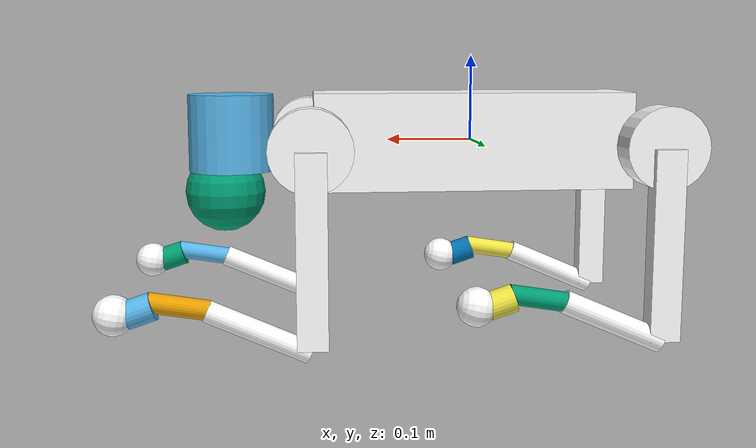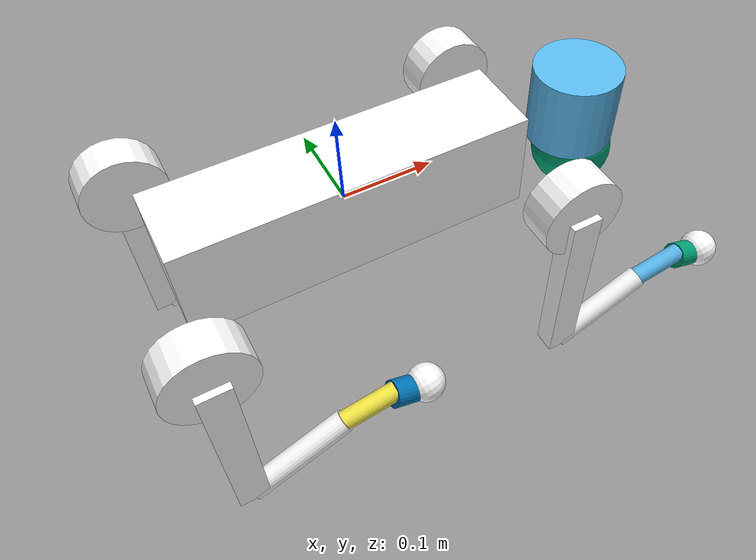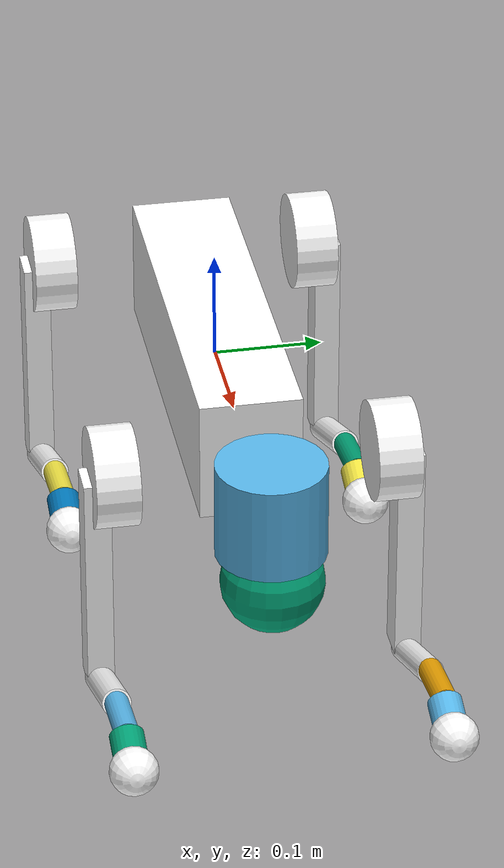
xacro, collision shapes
<robot xmlns:xacro="http://www.ros.org/wiki/xacro" name="robot">
    <xacro:arg name="simulation" default="false"/>
    <xacro:property name="simulation" value="$(arg simulation)"/>

    <xacro:include filename="$(find unitree_description)/urdf/go2/main.urdf"/>

    <xacro:if value="${simulation == 'mujoco'}">
        <xacro:include filename="$(find unitree_description)/urdf/go2/mujoco.xacro"/>
    </xacro:if>
    <xacro:if value="${simulation == False}">
        <xacro:include filename="$(find unitree_description)/urdf/go2/real.xacro"/>
    </xacro:if>

</robot>

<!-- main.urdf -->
<robot
        name="go2_description">
    <link
            name="base">
        <inertial>
            <origin
                    xyz="0.021112 0 -0.005366"
                    rpy="0 0 0"/>
            <mass
                    value="6.921"/>
            <inertia
                    ixx="0.02448"
                    ixy="0.00012166"
                    ixz="0.0014849"
                    iyy="0.098077"
                    iyz="-3.12E-05"
                    izz="0.107"/>
        </inertial>
        <visual>
            <origin
                    xyz="0 0 0"
                    rpy="0 0 0"/>
            <geometry>
                <mesh
                        filename="package://go2_description/dae/base.dae"/>
            </geometry>
            <material
                    name="">
                <color
                        rgba="1 1 1 1"/>
            </material>
        </visual>
        <collision>
            <origin rpy="0 0 0" xyz="0 0 0"/>
            <geometry>
                <box size="0.3762 0.0935 0.114"/>
            </geometry>
        </collision>
    </link>
    <link
            name="Head_upper">
        <inertial>
            <origin
                    xyz="0 0 0"
                    rpy="0 0 0"/>
            <mass
                    value="0.001"/>
            <inertia
                    ixx="9.6e-06"
                    ixy="0"
                    ixz="0"
                    iyy="9.6e-06"
                    iyz="0"
                    izz="9.6e-06"/>
        </inertial>
        <collision>
            <origin
                    xyz="0 0 0"
                    rpy="0 0 0"/>
            <geometry>
                <cylinder radius="0.05" length="0.09"/>
            </geometry>
        </collision>
    </link>
    <joint
            name="Head_upper_joint"
            type="fixed" dont_collapse="true">
        <origin
                xyz="0.285 0 0.01"
                rpy="0 0 0"/>
        <parent
                link="base"/>
        <child
                link="Head_upper"/>
        <axis
                xyz="0 0 0"/>
    </joint>
    <link
            name="Head_lower">
        <inertial>
            <origin
                    xyz="0 0 0"
                    rpy="0 0 0"/>
            <mass
                    value="0.001"/>
            <inertia
                    ixx="9.6e-06"
                    ixy="0"
                    ixz="0"
                    iyy="9.6e-06"
                    iyz="0"
                    izz="9.6e-06"/>
        </inertial>
        <collision>
            <origin
                    xyz="0 0 0"
                    rpy="0 0 0"/>
            <geometry>
                <sphere radius="0.047"/>
            </geometry>
        </collision>
    </link>
    <joint
            name="Head_lower_joint"
            type="fixed" dont_collapse="true">
        <origin
                xyz="0.008 0 -0.07"
                rpy="0 0 0"/>
        <parent
                link="Head_upper"/>
        <child
                link="Head_lower"/>
        <axis
                xyz="0 0 0"/>
    </joint>
    <link
            name="FL_hip">
        <inertial>
            <origin
                    xyz="-0.0054 0.00194 -0.000105"
                    rpy="0 0 0"/>
            <mass
                    value="0.678"/>
            <inertia
                    ixx="0.00048"
                    ixy="-3.01E-06"
                    ixz="1.11E-06"
                    iyy="0.000884"
                    iyz="-1.42E-06"
                    izz="0.000596"/>
        </inertial>
        <visual>
            <origin
                    xyz="0 0 0"
                    rpy="0 0 0"/>
            <geometry>
                <mesh
                        filename="package://go2_description/dae/hip.dae"/>
            </geometry>
            <material
                    name="">
                <color
                        rgba="1 1 1 1"/>
            </material>
        </visual>
        <collision>
            <origin rpy="1.5707963267948966 0 0" xyz="0 0.08 0"/>
            <geometry>
                <cylinder length="0.04" radius="0.046"/>
            </geometry>
        </collision>
    </link>
    <joint
            name="FL_hip_joint"
            type="revolute">
        <origin
                xyz="0.1934 0.0465 0"
                rpy="0 0 0"/>
        <parent
                link="base"/>
        <child
                link="FL_hip"/>
        <axis
                xyz="1 0 0"/>
        <limit
                lower="-1.0472"
                upper="1.0472"
                effort="23.7"
                velocity="30.1"/>
    </joint>
    <link name="FL_hip_rotor">
        <inertial>
            <origin rpy="0 0 0" xyz="0.0 0.0 0.0"/>
            <mass value="0.089"/>
            <inertia ixx="0.000111842" ixy="0.0" ixz="0.0" iyy="0.000059647" iyz="0.0" izz="0.000059647"/>
        </inertial>
    </link>
    <joint name="FL_hip_rotor_joint" type="fixed">
        <origin rpy="0 0 0" xyz="0.11215 0.04675 0"/>
        <parent link="base"/>
        <child link="FL_hip_rotor"/>
    </joint>
    <link
            name="FL_thigh">
        <inertial>
            <origin
                    xyz="-0.00374 -0.0223 -0.0327"
                    rpy="0 0 0"/>
            <mass
                    value="1.152"/>
            <inertia
                    ixx="0.00584"
                    ixy="8.72E-05"
                    ixz="-0.000289"
                    iyy="0.0058"
                    iyz="0.000808"
                    izz="0.00103"/>
        </inertial>
        <visual>
            <origin
                    xyz="0 0 0"
                    rpy="0 0 0"/>
            <geometry>
                <mesh
                        filename="package://go2_description/dae/thigh.dae"/>
            </geometry>
            <material
                    name="">
                <color
                        rgba="1 1 1 1"/>
            </material>
        </visual>
        <collision>
            <origin rpy="0 1.5707963267948966 0" xyz="0 0 -0.1065"/>
            <geometry>
                <box size="0.213 0.0245 0.034"/>
            </geometry>
        </collision>
    </link>
    <joint
            name="FL_thigh_joint"
            type="revolute">
        <origin
                xyz="0 0.0955 0"
                rpy="0 0 0"/>
        <parent
                link="FL_hip"/>
        <child
                link="FL_thigh"/>
        <axis
                xyz="0 1 0"/>
        <limit
                lower="-1.5708"
                upper="3.4907"
                effort="23.7"
                velocity="30.1"/>
    </joint>
    <link name="FL_thigh_rotor">
        <inertial>
            <origin rpy="0 0 0" xyz="0.0 0.0 0.0"/>
            <mass value="0.089"/>
            <inertia ixx="0.000059647" ixy="0.0" ixz="0.0" iyy="0.000111842" iyz="0.0" izz="0.000059647"/>
        </inertial>
    </link>
    <joint name="FL_thigh_rotor_joint" type="fixed">
        <origin rpy="0 0 0" xyz="0 -0.00015 0"/>
        <parent link="FL_hip"/>
        <child link="FL_thigh_rotor"/>
    </joint>
    <link
            name="FL_calf">
        <inertial>
            <origin
                    xyz="0.00548 -0.000975 -0.115"
                    rpy="0 0 0"/>
            <mass
                    value="0.154"/>
            <inertia
                    ixx="0.00108"
                    ixy="3.4E-07"
                    ixz="1.72E-05"
                    iyy="0.0011"
                    iyz="8.28E-06"
                    izz="3.29E-05"/>
        </inertial>
        <visual>
            <origin
                    xyz="0 0 0"
                    rpy="0 0 0"/>
            <geometry>
                <mesh
                        filename="package://go2_description/dae/calf.dae"/>
            </geometry>
            <material
                    name="">
                <color
                        rgba="1 1 1 1"/>
            </material>
        </visual>
        <collision>
            <origin rpy="0 -0.21 0" xyz="0.008 0 -0.06"/>
            <geometry>
                <cylinder length="0.12" radius="0.012"/>
            </geometry>
        </collision>
    </link>
    <joint
            name="FL_calf_joint"
            type="revolute">
        <origin
                xyz="0 0 -0.213"
                rpy="0 0 0"/>
        <parent
                link="FL_thigh"/>
        <child
                link="FL_calf"/>
        <axis
                xyz="0 1 0"/>
        <limit
                lower="-2.7227"
                upper="-0.83776"
                effort="45.43"
                velocity="15.70"/>
    </joint>
    <link
            name="FL_calflower">
        <collision>
            <origin rpy="0 0 0" xyz="0 0 0"/>
            <geometry>
                <cylinder length="0.065" radius="0.011"/>
            </geometry>
        </collision>
    </link>
    <joint
            name="FL_calflower_joint"
            type="fixed">
        <origin
                xyz="0.020 0 -0.148"
                rpy="0 0.05 0"/>
        <parent
                link="FL_calf"/>
        <child
                link="FL_calflower"/>
        <axis
                xyz="0 0 0"/>
    </joint>
    <link
            name="FL_calflower1">
        <collision>
            <origin rpy="0 0 0" xyz="0 0 0"/>
            <geometry>
                <cylinder length="0.03" radius="0.0155"/>
            </geometry>
        </collision>
    </link>
    <joint
            name="FL_calflower1_joint"
            type="fixed">
        <origin
                xyz="-0.01 0 -0.04"
                rpy="0 0.48 0"/>
        <parent
                link="FL_calflower"/>
        <child
                link="FL_calflower1"/>
        <axis
                xyz="0 0 0"/>
    </joint>
    <link name="FL_calf_rotor">
        <inertial>
            <origin rpy="0 0 0" xyz="0.0 0.0 0.0"/>
            <mass value="0.089"/>
            <inertia ixx="0.000059647" ixy="0.0" ixz="0.0" iyy="0.000111842" iyz="0.0" izz="0.000059647"/>
        </inertial>
    </link>
    <joint name="FL_calf_rotor_joint" type="fixed">
        <origin rpy="0 0 0" xyz="0 -0.03235 0"/>
        <parent link="FL_thigh"/>
        <child link="FL_calf_rotor"/>
    </joint>
    <link
            name="FL_foot">
        <inertial>
            <origin
                    xyz="0 0 0"
                    rpy="0 0 0"/>
            <mass
                    value="0.04"/>
            <inertia
                    ixx="9.6e-06"
                    ixy="0"
                    ixz="0"
                    iyy="9.6e-06"
                    iyz="0"
                    izz="9.6e-06"/>
        </inertial>
        <visual>
            <origin
                    xyz="0 0 0"
                    rpy="0 0 0"/>
            <geometry>
                <mesh
                        filename="package://go2_description/dae/foot.dae"/>
            </geometry>
            <material
                    name="">
                <color
                        rgba="1 1 1 1"/>
            </material>
        </visual>
        <collision>
            <origin rpy="0 0 0" xyz="-0.002 0 0"/>
            <geometry>
                <sphere radius="0.022"/>
            </geometry>
        </collision>
    </link>
    <joint
            name="FL_foot_joint"
            type="fixed" dont_collapse="true">
        <origin
                xyz="0 0 -0.213"
                rpy="0 0 0"/>
        <parent
                link="FL_calf"/>
        <child
                link="FL_foot"/>
        <axis
                xyz="0 0 0"/>
    </joint>
    <link
            name="FR_hip">
        <inertial>
            <origin
                    xyz="-0.0054 -0.00194 -0.000105"
                    rpy="0 0 0"/>
            <mass
                    value="0.678"/>
            <inertia
                    ixx="0.00048"
                    ixy="3.01E-06"
                    ixz="1.11E-06"
                    iyy="0.000884"
                    iyz="1.42E-06"
                    izz="0.000596"/>
        </inertial>
        <visual>
            <origin
                    xyz="0 0 0"
                    rpy="3.1415 0 0"/>
            <geometry>
                <mesh
                        filename="package://go2_description/dae/hip.dae"/>
            </geometry>
            <material
                    name="">
                <color
                        rgba="1 1 1 1"/>
            </material>
        </visual>
        <collision>
            <origin rpy="1.5707963267948966 0 0" xyz="0 -0.08 0"/>
            <geometry>
                <cylinder length="0.04" radius="0.046"/>
            </geometry>
        </collision>
    </link>
    <joint
            name="FR_hip_joint"
            type="revolute">
        <origin
                xyz="0.1934 -0.0465 0"
                rpy="0 0 0"/>
        <parent
                link="base"/>
        <child
                link="FR_hip"/>
        <axis
                xyz="1 0 0"/>
        <limit
                lower="-1.0472"
                upper="1.0472"
                effort="23.7"
                velocity="30.1"/>
    </joint>
    <link name="FR_hip_rotor">
        <inertial>
            <origin rpy="0 0 0" xyz="0.0 0.0 0.0"/>
            <mass value="0.089"/>
            <inertia ixx="0.000111842" ixy="0.0" ixz="0.0" iyy="0.000059647" iyz="0.0" izz="0.000059647"/>
        </inertial>
    </link>
    <joint name="FR_hip_rotor_joint" type="fixed">
        <origin rpy="0 0 0" xyz="0.11215 -0.04675 0"/>
        <parent link="base"/>
        <child link="FR_hip_rotor"/>
    </joint>
    <link
            name="FR_thigh">
        <inertial>
            <origin
                    xyz="-0.00374 0.0223 -0.0327"
                    rpy="0 0 0"/>
            <mass
                    value="1.152"/>
            <inertia
                    ixx="0.00584"
                    ixy="-8.72E-05"
                    ixz="-0.000289"
                    iyy="0.0058"
                    iyz="-0.000808"
                    izz="0.00103"/>
        </inertial>
        <visual>
            <origin
                    xyz="0 0 0"
                    rpy="0 0 0"/>
            <geometry>
                <mesh
                        filename="package://go2_description/dae/thigh_mirror.dae"/>
            </geometry>
            <material
                    name="">
                <color
                        rgba="1 1 1 1"/>
            </material>
        </visual>
        <collision>
            <origin rpy="0 1.5707963267948966 0" xyz="0 0 -0.1065"/>
            <geometry>
                <box size="0.213 0.0245 0.034"/>
            </geometry>
        </collision>
    </link>
    <joint
            name="FR_thigh_joint"
            type="revolute">
        <origin
                xyz="0 -0.0955 0"
                rpy="0 0 0"/>
        <parent
                link="FR_hip"/>
        <child
                link="FR_thigh"/>
        <axis
                xyz="0 1 0"/>
        <limit
                lower="-1.5708"
                upper="3.4907"
                effort="23.7"
                velocity="30.1"/>
    </joint>
    <link name="FR_thigh_rotor">
        <inertial>
            <origin rpy="0 0 0" xyz="0.0 0.0 0.0"/>
            <mass value="0.089"/>
            <inertia ixx="0.000059647" ixy="0.0" ixz="0.0" iyy="0.000111842" iyz="0.0" izz="0.000059647"/>
        </inertial>
    </link>
    <joint name="FR_thigh_rotor_joint" type="fixed">
        <origin rpy="0 0 0" xyz="0 0.00015 0"/>
        <parent link="FR_hip"/>
        <child link="FR_thigh_rotor"/>
    </joint>
    <link
            name="FR_calf">
        <inertial>
            <origin
                    xyz="0.00548 0.000975 -0.115"
                    rpy="0 0 0"/>
            <mass
                    value="0.154"/>
            <inertia
                    ixx="0.00108"
                    ixy="-3.4E-07"
                    ixz="1.72E-05"
                    iyy="0.0011"
                    iyz="-8.28E-06"
                    izz="3.29E-05"/>
        </inertial>
        <visual>
            <origin
                    xyz="0 0 0"
                    rpy="0 0 0"/>
            <geometry>
                <mesh
                        filename="package://go2_description/dae/calf_mirror.dae"/>
            </geometry>
            <material
                    name="">
                <color
                        rgba="1 1 1 1"/>
            </material>
        </visual>
        <collision>
            <origin rpy="0 -0.2 0" xyz="0.01 0 -0.06"/>
            <geometry>
                <cylinder length="0.12" radius="0.013"/>
            </geometry>
        </collision>
    </link>
    <joint
            name="FR_calf_joint"
            type="revolute">
        <origin
                xyz="0 0 -0.213"
                rpy="0 0 0"/>
        <parent
                link="FR_thigh"/>
        <child
                link="FR_calf"/>
        <axis
                xyz="0 1 0"/>
        <limit
                lower="-2.7227"
                upper="-0.83776"
                effort="45.43"
                velocity="15.70"/>
    </joint>
    <link
            name="FR_calflower">
        <collision>
            <origin rpy="0 0 0" xyz="0 0 0"/>
            <geometry>
                <cylinder length="0.065" radius="0.011"/>
            </geometry>
        </collision>
    </link>
    <joint
            name="FR_calflower_joint"
            type="fixed">
        <origin
                xyz="0.020 0 -0.148"
                rpy="0 0.05 0"/>
        <parent
                link="FR_calf"/>
        <child
                link="FR_calflower"/>
        <axis
                xyz="0 0 0"/>
    </joint>
    <link
            name="FR_calflower1">
        <collision>
            <origin rpy="0 0 0" xyz="0 0 0"/>
            <geometry>
                <cylinder length="0.03" radius="0.0155"/>
            </geometry>
        </collision>
    </link>
    <joint
            name="FR_calflower1_joint"
            type="fixed">
        <origin
                xyz="-0.01 0 -0.04"
                rpy="0 0.48 0"/>
        <parent
                link="FR_calflower"/>
        <child
                link="FR_calflower1"/>
        <axis
                xyz="0 0 0"/>
    </joint>
    <link name="FR_calf_rotor">
        <inertial>
            <origin rpy="0 0 0" xyz="0.0 0.0 0.0"/>
            <mass value="0.089"/>
            <inertia ixx="0.000059647" ixy="0.0" ixz="0.0" iyy="0.000111842" iyz="0.0" izz="0.000059647"/>
        </inertial>
    </link>
    <joint name="FR_calf_rotor_joint" type="fixed">
        <origin rpy="0 0 0" xyz="0 0.03235 0"/>
        <parent link="FR_thigh"/>
        <child link="FR_calf_rotor"/>
    </joint>
    <link
            name="FR_foot">
        <inertial>
            <origin
                    xyz="0 0 0"
                    rpy="0 0 0"/>
            <mass
                    value="0.04"/>
            <inertia
                    ixx="9.6e-06"
                    ixy="0"
                    ixz="0"
                    iyy="9.6e-06"
                    iyz="0"
                    izz="9.6e-06"/>
        </inertial>
        <visual>
            <origin
                    xyz="0 0 0"
                    rpy="0 0 0"/>
            <geometry>
                <mesh
                        filename="package://go2_description/dae/foot.dae"/>
            </geometry>
            <material
                    name="">
                <color
                        rgba="1 1 1 1"/>
            </material>
        </visual>
        <collision>
            <origin rpy="0 0 0" xyz="-0.002 0 0"/>
            <geometry>
                <sphere radius="0.022"/>
            </geometry>
        </collision>
    </link>
    <joint
            name="FR_foot_joint"
            type="fixed" dont_collapse="true">
        <origin
                xyz="0 0 -0.213"
                rpy="0 0 0"/>
        <parent
                link="FR_calf"/>
        <child
                link="FR_foot"/>
        <axis
                xyz="0 0 0"/>
    </joint>
    <link
            name="RL_hip">
        <inertial>
            <origin
                    xyz="0.0054 0.00194 -0.000105"
                    rpy="0 0 0"/>
            <mass
                    value="0.678"/>
            <inertia
                    ixx="0.00048"
                    ixy="3.01E-06"
                    ixz="-1.11E-06"
                    iyy="0.000884"
                    iyz="-1.42E-06"
                    izz="0.000596"/>
        </inertial>
        <visual>
            <origin
                    xyz="0 0 0"
                    rpy="0 3.1415 0"/>
            <geometry>
                <mesh
                        filename="package://go2_description/dae/hip.dae"/>
            </geometry>
            <material
                    name="">
                <color
                        rgba="1 1 1 1"/>
            </material>
        </visual>
        <collision>
            <origin rpy="1.5707963267948966 0 0" xyz="0 0.08 0"/>
            <geometry>
                <cylinder length="0.04" radius="0.046"/>
            </geometry>
        </collision>
    </link>
    <joint
            name="RL_hip_joint"
            type="revolute">
        <origin
                xyz="-0.1934 0.0465 0"
                rpy="0 0 0"/>
        <parent
                link="base"/>
        <child
                link="RL_hip"/>
        <axis
                xyz="1 0 0"/>
        <limit
                lower="-1.0472"
                upper="1.0472"
                effort="23.7"
                velocity="30.1"/>
    </joint>
    <link name="RL_hip_rotor">
        <inertial>
            <origin rpy="0 0 0" xyz="0.0 0.0 0.0"/>
            <mass value="0.089"/>
            <inertia ixx="0.000111842" ixy="0.0" ixz="0.0" iyy="0.000059647" iyz="0.0" izz="0.000059647"/>
        </inertial>
    </link>
    <joint name="RL_hip_rotor_joint" type="fixed">
        <origin rpy="0 0 0" xyz="-0.11215 0.04675 0"/>
        <parent link="base"/>
        <child link="RL_hip_rotor"/>
    </joint>
    <link
            name="RL_thigh">
        <inertial>
            <origin
                    xyz="-0.00374 -0.0223 -0.0327"
                    rpy="0 0 0"/>
            <mass
                    value="1.152"/>
            <inertia
                    ixx="0.00584"
                    ixy="8.72E-05"
                    ixz="-0.000289"
                    iyy="0.0058"
                    iyz="0.000808"
                    izz="0.00103"/>
        </inertial>
        <visual>
            <origin
                    xyz="0 0 0"
                    rpy="0 0 0"/>
            <geometry>
                <mesh
                        filename="package://go2_description/dae/thigh.dae"/>
            </geometry>
            <material
                    name="">
                <color
                        rgba="1 1 1 1"/>
            </material>
        </visual>
        <collision>
            <origin rpy="0 1.5707963267948966 0" xyz="0 0 -0.1065"/>
            <geometry>
                <box size="0.213 0.0245 0.034"/>
            </geometry>
        </collision>
    </link>
    <joint
            name="RL_thigh_joint"
            type="revolute">
        <origin
                xyz="0 0.0955 0"
                rpy="0 0 0"/>
        <parent
                link="RL_hip"/>
        <child
                link="RL_thigh"/>
        <axis
                xyz="0 1 0"/>
        <limit
                lower="-0.5236"
                upper="4.5379"
                effort="23.7"
                velocity="30.1"/>
    </joint>
    <link name="RL_thigh_rotor">
        <inertial>
            <origin rpy="0 0 0" xyz="0.0 0.0 0.0"/>
            <mass value="0.089"/>
            <inertia ixx="0.000059647" ixy="0.0" ixz="0.0" iyy="0.000111842" iyz="0.0" izz="0.000059647"/>
        </inertial>
    </link>
    <joint name="RL_thigh_rotor_joint" type="fixed">
        <origin rpy="0 0 0" xyz="0 -0.00015 0"/>
        <parent link="RL_hip"/>
        <child link="RL_thigh_rotor"/>
    </joint>
    <link
            name="RL_calf">
        <inertial>
            <origin
                    xyz="0.00548 -0.000975 -0.115"
                    rpy="0 0 0"/>
            <mass
                    value="0.154"/>
            <inertia
                    ixx="0.00108"
                    ixy="3.4E-07"
                    ixz="1.72E-05"
                    iyy="0.0011"
                    iyz="8.28E-06"
                    izz="3.29E-05"/>
        </inertial>
        <visual>
            <origin
                    xyz="0 0 0"
                    rpy="0 0 0"/>
            <geometry>
                <mesh
                        filename="package://go2_description/dae/calf.dae"/>
            </geometry>
            <material
                    name="">
                <color
                        rgba="1 1 1 1"/>
            </material>
        </visual>
        <collision>
            <origin rpy="0 -0.2 0" xyz="0.01 0 -0.06"/>
            <geometry>
                <cylinder length="0.12" radius="0.013"/>
            </geometry>
        </collision>
    </link>
    <joint
            name="RL_calf_joint"
            type="revolute">
        <origin
                xyz="0 0 -0.213"
                rpy="0 0 0"/>
        <parent
                link="RL_thigh"/>
        <child
                link="RL_calf"/>
        <axis
                xyz="0 1 0"/>
        <limit
                lower="-2.7227"
                upper="-0.83776"
                effort="45.43"
                velocity="15.70"/>
    </joint>
    <link
            name="RL_calflower">
        <collision>
            <origin rpy="0 0 0" xyz="0 0 0"/>
            <geometry>
                <cylinder length="0.065" radius="0.011"/>
            </geometry>
        </collision>
    </link>
    <joint
            name="RL_calflower_joint"
            type="fixed">
        <origin
                xyz="0.020 0 -0.148"
                rpy="0 0.05 0"/>
        <parent
                link="RL_calf"/>
        <child
                link="RL_calflower"/>
        <axis
                xyz="0 0 0"/>
    </joint>
    <link
            name="RL_calflower1">
        <collision>
            <origin rpy="0 0 0" xyz="0 0 0"/>
            <geometry>
                <cylinder length="0.03" radius="0.0155"/>
            </geometry>
        </collision>
    </link>
    <joint
            name="RL_calflower1_joint"
            type="fixed">
        <origin
                xyz="-0.01 0 -0.04"
                rpy="0 0.48 0"/>
        <parent
                link="RL_calflower"/>
        <child
                link="RL_calflower1"/>
        <axis
                xyz="0 0 0"/>
    </joint>
    <link name="RL_calf_rotor">
        <inertial>
            <origin rpy="0 0 0" xyz="0.0 0.0 0.0"/>
            <mass value="0.089"/>
            <inertia ixx="0.000059647" ixy="0.0" ixz="0.0" iyy="0.000111842" iyz="0.0" izz="0.000059647"/>
        </inertial>
    </link>
    <joint name="RL_calf_rotor_joint" type="fixed">
        <origin rpy="0 0 0" xyz="0 -0.03235 0"/>
        <parent link="RL_thigh"/>
        <child link="RL_calf_rotor"/>
    </joint>
    <link
            name="RL_foot">
        <inertial>
            <origin
                    xyz="0 0 0"
                    rpy="0 0 0"/>
            <mass
                    value="0.04"/>
            <inertia
                    ixx="9.6e-06"
                    ixy="0"
                    ixz="0"
                    iyy="9.6e-06"
                    iyz="0"
                    izz="9.6e-06"/>
        </inertial>
        <visual>
            <origin
                    xyz="0 0 0"
                    rpy="0 0 0"/>
            <geometry>
                <mesh
                        filename="package://go2_description/dae/foot.dae"/>
            </geometry>
            <material
                    name="">
                <color
                        rgba="1 1 1 1"/>
            </material>
        </visual>
        <collision>
            <origin rpy="0 0 0" xyz="-0.002 0 0"/>
            <geometry>
                <sphere radius="0.022"/>
            </geometry>
        </collision>
    </link>
    <joint
            name="RL_foot_joint"
            type="fixed" dont_collapse="true">
        <origin
                xyz="0 0 -0.213"
                rpy="0 0 0"/>
        <parent
                link="RL_calf"/>
        <child
                link="RL_foot"/>
        <axis
                xyz="0 0 0"/>
    </joint>
    <link
            name="RR_hip">
        <inertial>
            <origin
                    xyz="0.0054 -0.00194 -0.000105"
                    rpy="0 0 0"/>
            <mass
                    value="0.678"/>
            <inertia
                    ixx="0.00048"
                    ixy="-3.01E-06"
                    ixz="-1.11E-06"
                    iyy="0.000884"
                    iyz="1.42E-06"
                    izz="0.000596"/>
        </inertial>
        <visual>
            <origin
                    xyz="0 0 0"
                    rpy="3.1415 3.1415 0"/>
            <geometry>
                <mesh
                        filename="package://go2_description/dae/hip.dae"/>
            </geometry>
            <material
                    name="">
                <color
                        rgba="1 1 1 1"/>
            </material>
        </visual>
        <collision>
            <origin rpy="1.5707963267948966 0 0" xyz="0 -0.08 0"/>
            <geometry>
                <cylinder length="0.04" radius="0.046"/>
            </geometry>
        </collision>
    </link>
    <joint
            name="RR_hip_joint"
            type="revolute">
        <origin
                xyz="-0.1934 -0.0465 0"
                rpy="0 0 0"/>
        <parent
                link="base"/>
        <child
                link="RR_hip"/>
        <axis
                xyz="1 0 0"/>
        <limit
                lower="-1.0472"
                upper="1.0472"
                effort="23.7"
                velocity="30.1"/>
    </joint>
    <link name="RR_hip_rotor">
        <inertial>
            <origin rpy="0 0 0" xyz="0.0 0.0 0.0"/>
            <mass value="0.089"/>
            <inertia ixx="0.000111842" ixy="0.0" ixz="0.0" iyy="0.000059647" iyz="0.0" izz="0.000059647"/>
        </inertial>
    </link>
    <joint name="RR_hip_rotor_joint" type="fixed">
        <origin rpy="0 0 0" xyz="-0.11215 -0.04675 0"/>
        <parent link="base"/>
        <child link="RR_hip_rotor"/>
    </joint>
    <link
            name="RR_thigh">
        <inertial>
            <origin
                    xyz="-0.00374 0.0223 -0.0327"
                    rpy="0 0 0"/>
            <mass
                    value="1.152"/>
            <inertia
                    ixx="0.00584"
                    ixy="-8.72E-05"
                    ixz="-0.000289"
                    iyy="0.0058"
                    iyz="-0.000808"
                    izz="0.00103"/>
        </inertial>
        <visual>
            <origin
                    xyz="0 0 0"
                    rpy="0 0 0"/>
            <geometry>
                <mesh
                        filename="package://go2_description/dae/thigh_mirror.dae"/>
            </geometry>
            <material
                    name="">
                <color
                        rgba="1 1 1 1"/>
            </material>
        </visual>
        <collision>
            <origin rpy="0 1.5707963267948966 0" xyz="0 0 -0.1065"/>
            <geometry>
                <box size="0.213 0.0245 0.034"/>
            </geometry>
        </collision>
    </link>
    <joint
            name="RR_thigh_joint"
            type="revolute">
        <origin
                xyz="0 -0.0955 0"
                rpy="0 0 0"/>
        <parent
                link="RR_hip"/>
        <child
                link="RR_thigh"/>
        <axis
                xyz="0 1 0"/>
        <limit
                lower="-0.5236"
                upper="4.5379"
                effort="23.7"
                velocity="30.1"/>
    </joint>
    <link name="RR_thigh_rotor">
        <inertial>
            <origin rpy="0 0 0" xyz="0.0 0.0 0.0"/>
            <mass value="0.089"/>
            <inertia ixx="0.000059647" ixy="0.0" ixz="0.0" iyy="0.000111842" iyz="0.0" izz="0.000059647"/>
        </inertial>
    </link>
    <joint name="RR_thigh_rotor_joint" type="fixed">
        <origin rpy="0 0 0" xyz="0 0.00015 0"/>
        <parent link="RR_hip"/>
        <child link="RR_thigh_rotor"/>
    </joint>
    <link
            name="RR_calf">
        <inertial>
            <origin
                    xyz="0.00548 0.000975 -0.115"
                    rpy="0 0 0"/>
            <mass
                    value="0.154"/>
            <inertia
                    ixx="0.00108"
                    ixy="-3.4E-07"
                    ixz="1.72E-05"
                    iyy="0.0011"
                    iyz="-8.28E-06"
                    izz="3.29E-05"/>
        </inertial>
        <visual>
            <origin
                    xyz="0 0 0"
                    rpy="0 0 0"/>
            <geometry>
                <mesh
                        filename="package://go2_description/dae/calf_mirror.dae"/>
            </geometry>
            <material
                    name="">
                <color
                        rgba="1 1 1 1"/>
            </material>
        </visual>
        <collision>
            <origin rpy="0 -0.2 0" xyz="0.01 0 -0.06"/>
            <geometry>
                <cylinder length="0.12" radius="0.013"/>
            </geometry>
        </collision>
    </link>
    <joint
            name="RR_calf_joint"
            type="revolute">
        <origin
                xyz="0 0 -0.213"
                rpy="0 0 0"/>
        <parent
                link="RR_thigh"/>
        <child
                link="RR_calf"/>
        <axis
                xyz="0 1 0"/>
        <limit
                lower="-2.7227"
                upper="-0.83776"
                effort="45.43"
                velocity="15.70"/>
    </joint>
    <link
            name="RR_calflower">
        <collision>
            <origin rpy="0 0 0" xyz="0 0 0"/>
            <geometry>
                <cylinder length="0.065" radius="0.011"/>
            </geometry>
        </collision>
    </link>
    <joint
            name="RR_calflower_joint"
            type="fixed">
        <origin
                xyz="0.020 0 -0.148"
                rpy="0 0.05 0"/>
        <parent
                link="RR_calf"/>
        <child
                link="RR_calflower"/>
        <axis
                xyz="0 0 0"/>
    </joint>
    <link
            name="RR_calflower1">
        <collision>
            <origin rpy="0 0 0" xyz="0 0 0"/>
            <geometry>
                <cylinder length="0.03" radius="0.0155"/>
            </geometry>
        </collision>
    </link>
    <joint
            name="RR_calflower1_joint"
            type="fixed">
        <origin
                xyz="-0.01 0 -0.04"
                rpy="0 0.48 0"/>
        <parent
                link="RR_calflower"/>
        <child
                link="RR_calflower1"/>
        <axis
                xyz="0 0 0"/>
    </joint>
    <link name="RR_calf_rotor">
        <inertial>
            <origin rpy="0 0 0" xyz="0.0 0.0 0.0"/>
            <mass value="0.089"/>
            <inertia ixx="0.000059647" ixy="0.0" ixz="0.0" iyy="0.000111842" iyz="0.0" izz="0.000059647"/>
        </inertial>
    </link>
    <joint name="RR_calf_rotor_joint" type="fixed">
        <origin rpy="0 0 0" xyz="0 0.03235 0"/>
        <parent link="RR_thigh"/>
        <child link="RR_calf_rotor"/>
    </joint>
    <link
            name="RR_foot">
        <inertial>
            <origin
                    xyz="0 0 0"
                    rpy="0 0 0"/>
            <mass
                    value="0.04"/>
            <inertia
                    ixx="9.6e-06"
                    ixy="0"
                    ixz="0"
                    iyy="9.6e-06"
                    iyz="0"
                    izz="9.6e-06"/>
        </inertial>
        <visual>
            <origin
                    xyz="0 0 0"
                    rpy="0 0 0"/>
            <geometry>
                <mesh
                        filename="package://go2_description/dae/foot.dae"/>
            </geometry>
            <material
                    name="">
                <color
                        rgba="1 1 1 1"/>
            </material>
        </visual>
        <collision>
            <origin rpy="0 0 0" xyz="-0.002 0 0"/>
            <geometry>
                <sphere radius="0.022"/>
            </geometry>
        </collision>
    </link>
    <joint
            name="RR_foot_joint"
            type="fixed" dont_collapse="true">
        <origin
                xyz="0 0 -0.213"
                rpy="0 0 0"/>
        <parent
                link="RR_calf"/>
        <child
                link="RR_foot"/>
        <axis
                xyz="0 0 0"/>
    </joint>
    <link
            name="imu">
        <inertial>
            <origin
                    xyz="0 0 0"
                    rpy="0 0 0"/>
            <mass
                    value="0"/>
            <inertia
                    ixx="0"
                    ixy="0"
                    ixz="0"
                    iyy="0"
                    iyz="0"
                    izz="0"/>
        </inertial>
    </link>
    <joint
            name="imu_joint"
            type="fixed">
        <origin
                xyz="-0.02557 0 0.04232"
                rpy="0 0 0"/>
        <parent
                link="base"/>
        <child
                link="imu"/>
        <axis
                xyz="0 0 0"/>
    </joint>
    <link
            name="radar">
        <inertial>
            <origin
                    xyz="0 0 0"
                    rpy="0 0 0"/>
            <mass
                    value="0"/>
            <inertia
                    ixx="0"
                    ixy="0"
                    ixz="0"
                    iyy="0"
                    iyz="0"
                    izz="0"/>
        </inertial>
    </link>
    <joint
            name="radar_joint"
            type="fixed">
        <origin
                xyz="0.28945 0 -0.046825"
                rpy="0 2.8782 0"/>
        <parent
                link="base"/>
        <child
                link="radar"/>
        <axis
                xyz="0 0 0"/>
    </joint>
    <joint
            name="front_camera_joint"
            type="fixed">
        <origin
                rpy="0 0 0"
                xyz="0.32715 -0.00003 0.04297"/>
        <parent
                link="base"/>
        <child
                link="front_camera"/>
    </joint>
    <link
            name="front_camera">
    </link>
</robot>
